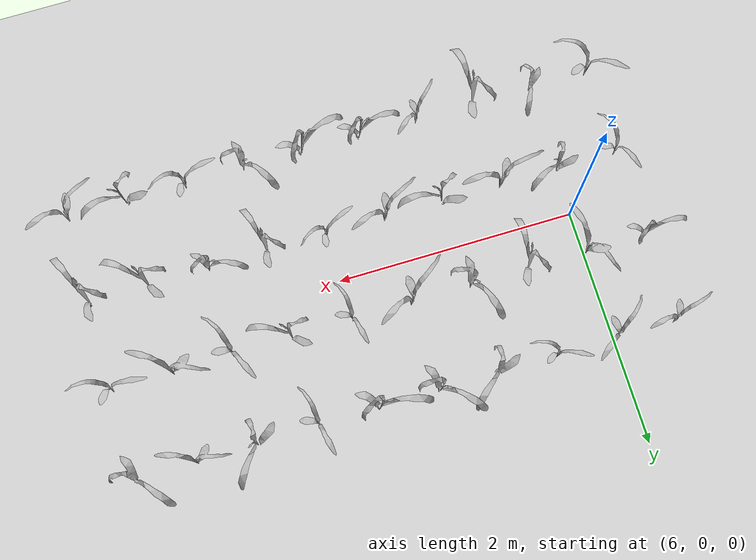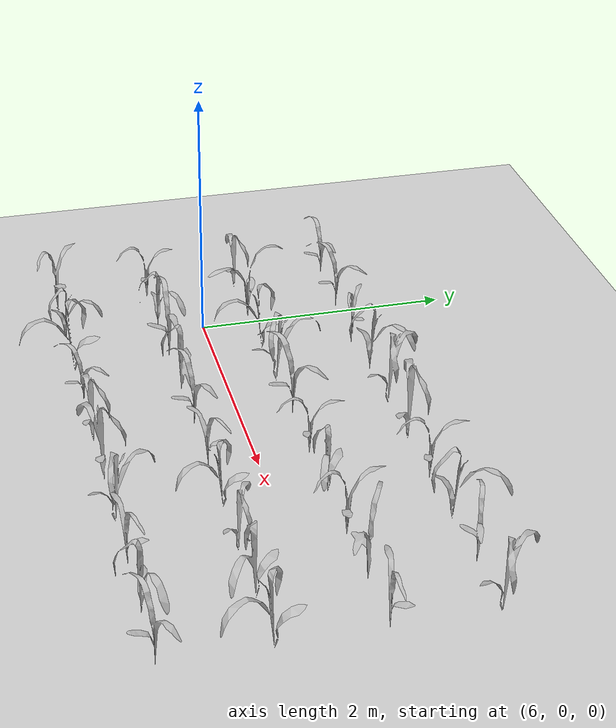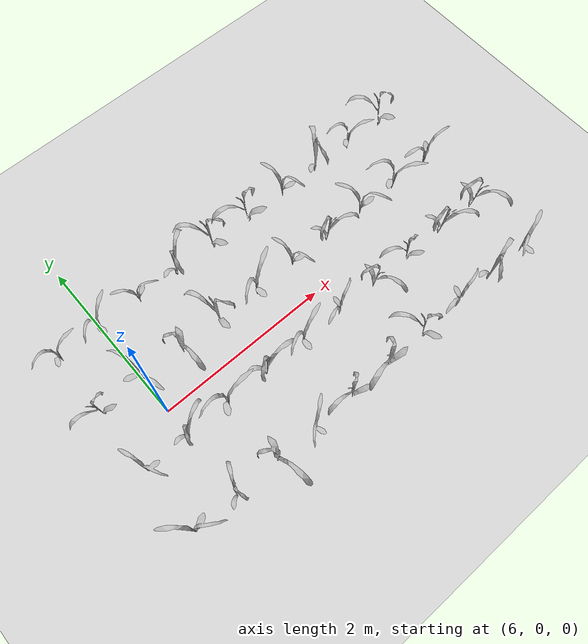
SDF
<sdf version="1.6">
 <world name="default">
  <model name="ground_plane">
   <static>1</static>
   <link name="link">
    <collision name="collision">
     <geometry><plane><normal>0 0 1</normal><size>100 100</size></plane></geometry>
     <surface>
      <contact><collide_bitmask>65535</collide_bitmask></contact>
      <friction><ode><mu>100</mu><mu2>50</mu2></ode></friction>
     </surface>
    </collision>
    <visual name="visual">
     <cast_shadows>0</cast_shadows>
     <geometry><plane><normal>0 0 1</normal><size>100 100</size></plane></geometry>
     <material>
      <script><uri>file://media/materials/scripts/gazebo.material</uri><name>Gazebo/Grey</name></script>
     </material>
    </visual>
   </link>
  </model>
  <model name="maize_01_0040">
   <pose>5.5 0.375 0.05 0 -0 3.887574766477994</pose>
   <link name="maize_01_0040_link">
    <inertial>
     <mass>5.0</mass>
     <inertia>
      <ixx>0.0033416667</ixx>
      <ixy>0</ixy>
      <ixz>0</ixz>
      <iyy>0.0033416667</iyy>
      <iyz>0</iyz>
      <izz>0.000016666667</izz>
     </inertia>
     <pose>0 0 0.1 0 0 0</pose>
    </inertial>
    <collision name="collision">
     <pose>0 0 0.2 0 -0 0</pose>
     <geometry><box><size>0.02 0.02 0.4</size></box></geometry>
     <surface><friction><ode><mu>10</mu><mu2>10</mu2></ode></friction></surface>
    </collision>
    <visual name="visual">
     <geometry>
      <mesh>
       <uri>model://maize_01/meshes/maize_01.dae</uri>
       <scale>0.5489192693650802 0.5489192693650802 0.5489192693650802</scale>
      </mesh>
     </geometry>
    </visual>
   </link>
  </model>
  <model name="maize_02_0041">
   <pose>5.5 1.125 0.05 0 -0 2.3619413126375988</pose>
   <link name="maize_02_0041_link">
    <inertial>
     <mass>5.0</mass>
     <inertia>
      <ixx>0.0033416667</ixx>
      <ixy>0</ixy>
      <ixz>0</ixz>
      <iyy>0.0033416667</iyy>
      <iyz>0</iyz>
      <izz>0.000016666667</izz>
     </inertia>
     <pose>0 0 0.1 0 0 0</pose>
    </inertial>
    <collision name="collision">
     <pose>0 0 0.2 0 -0 0</pose>
     <geometry><box><size>0.02 0.02 0.4</size></box></geometry>
     <surface><friction><ode><mu>10</mu><mu2>10</mu2></ode></friction></surface>
    </collision>
    <visual name="visual">
     <geometry>
      <mesh>
       <uri>model://maize_02/meshes/maize_02.dae</uri>
       <scale>0.5501693872556289 0.5501693872556289 0.5501693872556289</scale>
      </mesh>
     </geometry>
    </visual>
   </link>
  </model>
  <model name="maize_02_0042">
   <pose>5.5 -0.375 0.05 0 -0 4.083068784888128</pose>
   <link name="maize_02_0042_link">
    <inertial>
     <mass>5.0</mass>
     <inertia>
      <ixx>0.0033416667</ixx>
      <ixy>0</ixy>
      <ixz>0</ixz>
      <iyy>0.0033416667</iyy>
      <iyz>0</iyz>
      <izz>0.000016666667</izz>
     </inertia>
     <pose>0 0 0.1 0 0 0</pose>
    </inertial>
    <collision name="collision">
     <pose>0 0 0.2 0 -0 0</pose>
     <geometry><box><size>0.02 0.02 0.4</size></box></geometry>
     <surface><friction><ode><mu>10</mu><mu2>10</mu2></ode></friction></surface>
    </collision>
    <visual name="visual">
     <geometry>
      <mesh>
       <uri>model://maize_02/meshes/maize_02.dae</uri>
       <scale>0.5530000482037853 0.5530000482037853 0.5530000482037853</scale>
      </mesh>
     </geometry>
    </visual>
   </link>
  </model>
  <model name="maize_02_0043">
   <pose>5.5 -1.125 0.05 0 -0 4.679963526451803</pose>
   <link name="maize_02_0043_link">
    <inertial>
     <mass>5.0</mass>
     <inertia>
      <ixx>0.0033416667</ixx>
      <ixy>0</ixy>
      <ixz>0</ixz>
      <iyy>0.0033416667</iyy>
      <iyz>0</iyz>
      <izz>0.000016666667</izz>
     </inertia>
     <pose>0 0 0.1 0 0 0</pose>
    </inertial>
    <collision name="collision">
     <pose>0 0 0.2 0 -0 0</pose>
     <geometry><box><size>0.02 0.02 0.4</size></box></geometry>
     <surface><friction><ode><mu>10</mu><mu2>10</mu2></ode></friction></surface>
    </collision>
    <visual name="visual">
     <geometry>
      <mesh>
       <uri>model://maize_02/meshes/maize_02.dae</uri>
       <scale>0.6465327736157129 0.6465327736157129 0.6465327736157129</scale>
      </mesh>
     </geometry>
    </visual>
   </link>
  </model>
  <model name="maize_02_0044">
   <pose>6.0 0.375 0.05 0 -0 0.8436668734788505</pose>
   <link name="maize_02_0044_link">
    <inertial>
     <mass>5.0</mass>
     <inertia>
      <ixx>0.0033416667</ixx>
      <ixy>0</ixy>
      <ixz>0</ixz>
      <iyy>0.0033416667</iyy>
      <iyz>0</iyz>
      <izz>0.000016666667</izz>
     </inertia>
     <pose>0 0 0.1 0 0 0</pose>
    </inertial>
    <collision name="collision">
     <pose>0 0 0.2 0 -0 0</pose>
     <geometry><box><size>0.02 0.02 0.4</size></box></geometry>
     <surface><friction><ode><mu>10</mu><mu2>10</mu2></ode></friction></surface>
    </collision>
    <visual name="visual">
     <geometry>
      <mesh>
       <uri>model://maize_02/meshes/maize_02.dae</uri>
       <scale>0.6668488416863659 0.6668488416863659 0.6668488416863659</scale>
      </mesh>
     </geometry>
    </visual>
   </link>
  </model>
  <model name="maize_02_0045">
   <pose>6.0 1.125 0.05 0 -0 2.847201937121884</pose>
   <link name="maize_02_0045_link">
    <inertial>
     <mass>5.0</mass>
     <inertia>
      <ixx>0.0033416667</ixx>
      <ixy>0</ixy>
      <ixz>0</ixz>
      <iyy>0.0033416667</iyy>
      <iyz>0</iyz>
      <izz>0.000016666667</izz>
     </inertia>
     <pose>0 0 0.1 0 0 0</pose>
    </inertial>
    <collision name="collision">
     <pose>0 0 0.2 0 -0 0</pose>
     <geometry><box><size>0.02 0.02 0.4</size></box></geometry>
     <surface><friction><ode><mu>10</mu><mu2>10</mu2></ode></friction></surface>
    </collision>
    <visual name="visual">
     <geometry>
      <mesh>
       <uri>model://maize_02/meshes/maize_02.dae</uri>
       <scale>0.5905462226182049 0.5905462226182049 0.5905462226182049</scale>
      </mesh>
     </geometry>
    </visual>
   </link>
  </model>
  <model name="maize_01_0046">
   <pose>6.0 -0.375 0.05 0 -0 1.2947930681933637</pose>
   <link name="maize_01_0046_link">
    <inertial>
     <mass>5.0</mass>
     <inertia>
      <ixx>0.0033416667</ixx>
      <ixy>0</ixy>
      <ixz>0</ixz>
      <iyy>0.0033416667</iyy>
      <iyz>0</iyz>
      <izz>0.000016666667</izz>
     </inertia>
     <pose>0 0 0.1 0 0 0</pose>
    </inertial>
    <collision name="collision">
     <pose>0 0 0.2 0 -0 0</pose>
     <geometry><box><size>0.02 0.02 0.4</size></box></geometry>
     <surface><friction><ode><mu>10</mu><mu2>10</mu2></ode></friction></surface>
    </collision>
    <visual name="visual">
     <geometry>
      <mesh>
       <uri>model://maize_01/meshes/maize_01.dae</uri>
       <scale>0.5602845266150258 0.5602845266150258 0.5602845266150258</scale>
      </mesh>
     </geometry>
    </visual>
   </link>
  </model>
  <model name="maize_01_0047">
   <pose>6.0 -1.125 0.05 0 -0 1.9447629273371778</pose>
   <link name="maize_01_0047_link">
    <inertial>
     <mass>5.0</mass>
     <inertia>
      <ixx>0.0033416667</ixx>
      <ixy>0</ixy>
      <ixz>0</ixz>
      <iyy>0.0033416667</iyy>
      <iyz>0</iyz>
      <izz>0.000016666667</izz>
     </inertia>
     <pose>0 0 0.1 0 0 0</pose>
    </inertial>
    <collision name="collision">
     <pose>0 0 0.2 0 -0 0</pose>
     <geometry><box><size>0.02 0.02 0.4</size></box></geometry>
     <surface><friction><ode><mu>10</mu><mu2>10</mu2></ode></friction></surface>
    </collision>
    <visual name="visual">
     <geometry>
      <mesh>
       <uri>model://maize_01/meshes/maize_01.dae</uri>
       <scale>0.5058932557829288 0.5058932557829288 0.5058932557829288</scale>
      </mesh>
     </geometry>
    </visual>
   </link>
  </model>
  <model name="maize_01_0048">
   <pose>6.5 0.375 0.05 0 -0 5.524367839968027</pose>
   <link name="maize_01_0048_link">
    <inertial>
     <mass>5.0</mass>
     <inertia>
      <ixx>0.0033416667</ixx>
      <ixy>0</ixy>
      <ixz>0</ixz>
      <iyy>0.0033416667</iyy>
      <iyz>0</iyz>
      <izz>0.000016666667</izz>
     </inertia>
     <pose>0 0 0.1 0 0 0</pose>
    </inertial>
    <collision name="collision">
     <pose>0 0 0.2 0 -0 0</pose>
     <geometry><box><size>0.02 0.02 0.4</size></box></geometry>
     <surface><friction><ode><mu>10</mu><mu2>10</mu2></ode></friction></surface>
    </collision>
    <visual name="visual">
     <geometry>
      <mesh>
       <uri>model://maize_01/meshes/maize_01.dae</uri>
       <scale>0.634801878046184 0.634801878046184 0.634801878046184</scale>
      </mesh>
     </geometry>
    </visual>
   </link>
  </model>
  <model name="maize_02_0049">
   <pose>6.5 1.125 0.05 0 -0 4.81982130819356</pose>
   <link name="maize_02_0049_link">
    <inertial>
     <mass>5.0</mass>
     <inertia>
      <ixx>0.0033416667</ixx>
      <ixy>0</ixy>
      <ixz>0</ixz>
      <iyy>0.0033416667</iyy>
      <iyz>0</iyz>
      <izz>0.000016666667</izz>
     </inertia>
     <pose>0 0 0.1 0 0 0</pose>
    </inertial>
    <collision name="collision">
     <pose>0 0 0.2 0 -0 0</pose>
     <geometry><box><size>0.02 0.02 0.4</size></box></geometry>
     <surface><friction><ode><mu>10</mu><mu2>10</mu2></ode></friction></surface>
    </collision>
    <visual name="visual">
     <geometry>
      <mesh>
       <uri>model://maize_02/meshes/maize_02.dae</uri>
       <scale>0.5031114657585396 0.5031114657585396 0.5031114657585396</scale>
      </mesh>
     </geometry>
    </visual>
   </link>
  </model>
  <model name="maize_02_0050">
   <pose>6.5 -0.375 0.05 0 -0 2.2194903250908564</pose>
   <link name="maize_02_0050_link">
    <inertial>
     <mass>5.0</mass>
     <inertia>
      <ixx>0.0033416667</ixx>
      <ixy>0</ixy>
      <ixz>0</ixz>
      <iyy>0.0033416667</iyy>
      <iyz>0</iyz>
      <izz>0.000016666667</izz>
     </inertia>
     <pose>0 0 0.1 0 0 0</pose>
    </inertial>
    <collision name="collision">
     <pose>0 0 0.2 0 -0 0</pose>
     <geometry><box><size>0.02 0.02 0.4</size></box></geometry>
     <surface><friction><ode><mu>10</mu><mu2>10</mu2></ode></friction></surface>
    </collision>
    <visual name="visual">
     <geometry>
      <mesh>
       <uri>model://maize_02/meshes/maize_02.dae</uri>
       <scale>0.6820594748634804 0.6820594748634804 0.6820594748634804</scale>
      </mesh>
     </geometry>
    </visual>
   </link>
  </model>
  <model name="maize_01_0051">
   <pose>6.5 -1.125 0.05 0 -0 5.651115416720341</pose>
   <link name="maize_01_0051_link">
    <inertial>
     <mass>5.0</mass>
     <inertia>
      <ixx>0.0033416667</ixx>
      <ixy>0</ixy>
      <ixz>0</ixz>
      <iyy>0.0033416667</iyy>
      <iyz>0</iyz>
      <izz>0.000016666667</izz>
     </inertia>
     <pose>0 0 0.1 0 0 0</pose>
    </inertial>
    <collision name="collision">
     <pose>0 0 0.2 0 -0 0</pose>
     <geometry><box><size>0.02 0.02 0.4</size></box></geometry>
     <surface><friction><ode><mu>10</mu><mu2>10</mu2></ode></friction></surface>
    </collision>
    <visual name="visual">
     <geometry>
      <mesh>
       <uri>model://maize_01/meshes/maize_01.dae</uri>
       <scale>0.6958102714642818 0.6958102714642818 0.6958102714642818</scale>
      </mesh>
     </geometry>
    </visual>
   </link>
  </model>
  <model name="maize_01_0052">
   <pose>7.0 0.375 0.05 0 -0 2.7099210681280055</pose>
   <link name="maize_01_0052_link">
    <inertial>
     <mass>5.0</mass>
     <inertia>
      <ixx>0.0033416667</ixx>
      <ixy>0</ixy>
      <ixz>0</ixz>
      <iyy>0.0033416667</iyy>
      <iyz>0</iyz>
      <izz>0.000016666667</izz>
     </inertia>
     <pose>0 0 0.1 0 0 0</pose>
    </inertial>
    <collision name="collision">
     <pose>0 0 0.2 0 -0 0</pose>
     <geometry><box><size>0.02 0.02 0.4</size></box></geometry>
     <surface><friction><ode><mu>10</mu><mu2>10</mu2></ode></friction></surface>
    </collision>
    <visual name="visual">
     <geometry>
      <mesh>
       <uri>model://maize_01/meshes/maize_01.dae</uri>
       <scale>0.6691300027135483 0.6691300027135483 0.6691300027135483</scale>
      </mesh>
     </geometry>
    </visual>
   </link>
  </model>
  <model name="maize_01_0053">
   <pose>7.0 1.125 0.05 0 -0 1.5384217549494101</pose>
   <link name="maize_01_0053_link">
    <inertial>
     <mass>5.0</mass>
     <inertia>
      <ixx>0.0033416667</ixx>
      <ixy>0</ixy>
      <ixz>0</ixz>
      <iyy>0.0033416667</iyy>
      <iyz>0</iyz>
      <izz>0.000016666667</izz>
     </inertia>
     <pose>0 0 0.1 0 0 0</pose>
    </inertial>
    <collision name="collision">
     <pose>0 0 0.2 0 -0 0</pose>
     <geometry><box><size>0.02 0.02 0.4</size></box></geometry>
     <surface><friction><ode><mu>10</mu><mu2>10</mu2></ode></friction></surface>
    </collision>
    <visual name="visual">
     <geometry>
      <mesh>
       <uri>model://maize_01/meshes/maize_01.dae</uri>
       <scale>0.633565423696171 0.633565423696171 0.633565423696171</scale>
      </mesh>
     </geometry>
    </visual>
   </link>
  </model>
  <model name="maize_01_0054">
   <pose>7.0 -0.375 0.05 0 -0 0.7859409075128175</pose>
   <link name="maize_01_0054_link">
    <inertial>
     <mass>5.0</mass>
     <inertia>
      <ixx>0.0033416667</ixx>
      <ixy>0</ixy>
      <ixz>0</ixz>
      <iyy>0.0033416667</iyy>
      <iyz>0</iyz>
      <izz>0.000016666667</izz>
     </inertia>
     <pose>0 0 0.1 0 0 0</pose>
    </inertial>
    <collision name="collision">
     <pose>0 0 0.2 0 -0 0</pose>
     <geometry><box><size>0.02 0.02 0.4</size></box></geometry>
     <surface><friction><ode><mu>10</mu><mu2>10</mu2></ode></friction></surface>
    </collision>
    <visual name="visual">
     <geometry>
      <mesh>
       <uri>model://maize_01/meshes/maize_01.dae</uri>
       <scale>0.6438057635443771 0.6438057635443771 0.6438057635443771</scale>
      </mesh>
     </geometry>
    </visual>
   </link>
  </model>
  <model name="maize_02_0055">
   <pose>7.0 -1.125 0.05 0 -0 2.8656782531925153</pose>
   <link name="maize_02_0055_link">
    <inertial>
     <mass>5.0</mass>
     <inertia>
      <ixx>0.0033416667</ixx>
      <ixy>0</ixy>
      <ixz>0</ixz>
      <iyy>0.0033416667</iyy>
      <iyz>0</iyz>
      <izz>0.000016666667</izz>
     </inertia>
     <pose>0 0 0.1 0 0 0</pose>
    </inertial>
    <collision name="collision">
     <pose>0 0 0.2 0 -0 0</pose>
     <geometry><box><size>0.02 0.02 0.4</size></box></geometry>
     <surface><friction><ode><mu>10</mu><mu2>10</mu2></ode></friction></surface>
    </collision>
    <visual name="visual">
     <geometry>
      <mesh>
       <uri>model://maize_02/meshes/maize_02.dae</uri>
       <scale>0.5251471431352807 0.5251471431352807 0.5251471431352807</scale>
      </mesh>
     </geometry>
    </visual>
   </link>
  </model>
  <model name="maize_02_0056">
   <pose>7.5 0.375 0.05 0 -0 2.7171973356963255</pose>
   <link name="maize_02_0056_link">
    <inertial>
     <mass>5.0</mass>
     <inertia>
      <ixx>0.0033416667</ixx>
      <ixy>0</ixy>
      <ixz>0</ixz>
      <iyy>0.0033416667</iyy>
      <iyz>0</iyz>
      <izz>0.000016666667</izz>
     </inertia>
     <pose>0 0 0.1 0 0 0</pose>
    </inertial>
    <collision name="collision">
     <pose>0 0 0.2 0 -0 0</pose>
     <geometry><box><size>0.02 0.02 0.4</size></box></geometry>
     <surface><friction><ode><mu>10</mu><mu2>10</mu2></ode></friction></surface>
    </collision>
    <visual name="visual">
     <geometry>
      <mesh>
       <uri>model://maize_02/meshes/maize_02.dae</uri>
       <scale>0.6952513788042518 0.6952513788042518 0.6952513788042518</scale>
      </mesh>
     </geometry>
    </visual>
   </link>
  </model>
  <model name="maize_01_0057">
   <pose>7.5 1.125 0.05 0 -0 3.131954284944509</pose>
   <link name="maize_01_0057_link">
    <inertial>
     <mass>5.0</mass>
     <inertia>
      <ixx>0.0033416667</ixx>
      <ixy>0</ixy>
      <ixz>0</ixz>
      <iyy>0.0033416667</iyy>
      <iyz>0</iyz>
      <izz>0.000016666667</izz>
     </inertia>
     <pose>0 0 0.1 0 0 0</pose>
    </inertial>
    <collision name="collision">
     <pose>0 0 0.2 0 -0 0</pose>
     <geometry><box><size>0.02 0.02 0.4</size></box></geometry>
     <surface><friction><ode><mu>10</mu><mu2>10</mu2></ode></friction></surface>
    </collision>
    <visual name="visual">
     <geometry>
      <mesh>
       <uri>model://maize_01/meshes/maize_01.dae</uri>
       <scale>0.6762899672990061 0.6762899672990061 0.6762899672990061</scale>
      </mesh>
     </geometry>
    </visual>
   </link>
  </model>
  <model name="maize_02_0058">
   <pose>7.5 -0.375 0.05 0 -0 2.5350907079838056</pose>
   <link name="maize_02_0058_link">
    <inertial>
     <mass>5.0</mass>
     <inertia>
      <ixx>0.0033416667</ixx>
      <ixy>0</ixy>
      <ixz>0</ixz>
      <iyy>0.0033416667</iyy>
      <iyz>0</iyz>
      <izz>0.000016666667</izz>
     </inertia>
     <pose>0 0 0.1 0 0 0</pose>
    </inertial>
    <collision name="collision">
     <pose>0 0 0.2 0 -0 0</pose>
     <geometry><box><size>0.02 0.02 0.4</size></box></geometry>
     <surface><friction><ode><mu>10</mu><mu2>10</mu2></ode></friction></surface>
    </collision>
    <visual name="visual">
     <geometry>
      <mesh>
       <uri>model://maize_02/meshes/maize_02.dae</uri>
       <scale>0.6381679518568922 0.6381679518568922 0.6381679518568922</scale>
      </mesh>
     </geometry>
    </visual>
   </link>
  </model>
  <model name="maize_01_0059">
   <pose>7.5 -1.125 0.05 0 -0 3.968055489600705</pose>
   <link name="maize_01_0059_link">
    <inertial>
     <mass>5.0</mass>
     <inertia>
      <ixx>0.0033416667</ixx>
      <ixy>0</ixy>
      <ixz>0</ixz>
      <iyy>0.0033416667</iyy>
      <iyz>0</iyz>
      <izz>0.000016666667</izz>
     </inertia>
     <pose>0 0 0.1 0 0 0</pose>
    </inertial>
    <collision name="collision">
     <pose>0 0 0.2 0 -0 0</pose>
     <geometry><box><size>0.02 0.02 0.4</size></box></geometry>
     <surface><friction><ode><mu>10</mu><mu2>10</mu2></ode></friction></surface>
    </collision>
    <visual name="visual">
     <geometry>
      <mesh>
       <uri>model://maize_01/meshes/maize_01.dae</uri>
       <scale>0.5893720003046389 0.5893720003046389 0.5893720003046389</scale>
      </mesh>
     </geometry>
    </visual>
   </link>
  </model>
  <model name="maize_02_0060">
   <pose>8.0 0.375 0.05 0 -0 3.9464323315970296</pose>
   <link name="maize_02_0060_link">
    <inertial>
     <mass>5.0</mass>
     <inertia>
      <ixx>0.0033416667</ixx>
      <ixy>0</ixy>
      <ixz>0</ixz>
      <iyy>0.0033416667</iyy>
      <iyz>0</iyz>
      <izz>0.000016666667</izz>
     </inertia>
     <pose>0 0 0.1 0 0 0</pose>
    </inertial>
    <collision name="collision">
     <pose>0 0 0.2 0 -0 0</pose>
     <geometry><box><size>0.02 0.02 0.4</size></box></geometry>
     <surface><friction><ode><mu>10</mu><mu2>10</mu2></ode></friction></surface>
    </collision>
    <visual name="visual">
     <geometry>
      <mesh>
       <uri>model://maize_02/meshes/maize_02.dae</uri>
       <scale>0.5412554866058185 0.5412554866058185 0.5412554866058185</scale>
      </mesh>
     </geometry>
    </visual>
   </link>
  </model>
  <model name="maize_01_0061">
   <pose>8.0 1.125 0.05 0 -0 3.6858187307931813</pose>
   <link name="maize_01_0061_link">
    <inertial>
     <mass>5.0</mass>
     <inertia>
      <ixx>0.0033416667</ixx>
      <ixy>0</ixy>
      <ixz>0</ixz>
      <iyy>0.0033416667</iyy>
      <iyz>0</iyz>
      <izz>0.000016666667</izz>
     </inertia>
     <pose>0 0 0.1 0 0 0</pose>
    </inertial>
    <collision name="collision">
     <pose>0 0 0.2 0 -0 0</pose>
     <geometry><box><size>0.02 0.02 0.4</size></box></geometry>
     <surface><friction><ode><mu>10</mu><mu2>10</mu2></ode></friction></surface>
    </collision>
    <visual name="visual">
     <geometry>
      <mesh>
       <uri>model://maize_01/meshes/maize_01.dae</uri>
       <scale>0.6982450714203192 0.6982450714203192 0.6982450714203192</scale>
      </mesh>
     </geometry>
    </visual>
   </link>
  </model>
  <model name="maize_02_0062">
   <pose>8.0 -0.375 0.05 0 -0 5.693590974628645</pose>
   <link name="maize_02_0062_link">
    <inertial>
     <mass>5.0</mass>
     <inertia>
      <ixx>0.0033416667</ixx>
      <ixy>0</ixy>
      <ixz>0</ixz>
      <iyy>0.0033416667</iyy>
      <iyz>0</iyz>
      <izz>0.000016666667</izz>
     </inertia>
     <pose>0 0 0.1 0 0 0</pose>
    </inertial>
    <collision name="collision">
     <pose>0 0 0.2 0 -0 0</pose>
     <geometry><box><size>0.02 0.02 0.4</size></box></geometry>
     <surface><friction><ode><mu>10</mu><mu2>10</mu2></ode></friction></surface>
    </collision>
    <visual name="visual">
     <geometry>
      <mesh>
       <uri>model://maize_02/meshes/maize_02.dae</uri>
       <scale>0.5254142955412426 0.5254142955412426 0.5254142955412426</scale>
      </mesh>
     </geometry>
    </visual>
   </link>
  </model>
  <model name="maize_01_0063">
   <pose>8.0 -1.125 0.05 0 -0 4.195880050040716</pose>
   <link name="maize_01_0063_link">
    <inertial>
     <mass>5.0</mass>
     <inertia>
      <ixx>0.0033416667</ixx>
      <ixy>0</ixy>
      <ixz>0</ixz>
      <iyy>0.0033416667</iyy>
      <iyz>0</iyz>
      <izz>0.000016666667</izz>
     </inertia>
     <pose>0 0 0.1 0 0 0</pose>
    </inertial>
    <collision name="collision">
     <pose>0 0 0.2 0 -0 0</pose>
     <geometry><box><size>0.02 0.02 0.4</size></box></geometry>
     <surface><friction><ode><mu>10</mu><mu2>10</mu2></ode></friction></surface>
    </collision>
    <visual name="visual">
     <geometry>
      <mesh>
       <uri>model://maize_01/meshes/maize_01.dae</uri>
       <scale>0.674402580278686 0.674402580278686 0.674402580278686</scale>
      </mesh>
     </geometry>
    </visual>
   </link>
  </model>
  <model name="maize_01_0064">
   <pose>8.5 0.375 0.05 0 -0 0.437970465267605</pose>
   <link name="maize_01_0064_link">
    <inertial>
     <mass>5.0</mass>
     <inertia>
      <ixx>0.0033416667</ixx>
      <ixy>0</ixy>
      <ixz>0</ixz>
      <iyy>0.0033416667</iyy>
      <iyz>0</iyz>
      <izz>0.000016666667</izz>
     </inertia>
     <pose>0 0 0.1 0 0 0</pose>
    </inertial>
    <collision name="collision">
     <pose>0 0 0.2 0 -0 0</pose>
     <geometry><box><size>0.02 0.02 0.4</size></box></geometry>
     <surface><friction><ode><mu>10</mu><mu2>10</mu2></ode></friction></surface>
    </collision>
    <visual name="visual">
     <geometry>
      <mesh>
       <uri>model://maize_01/meshes/maize_01.dae</uri>
       <scale>0.6044091149506376 0.6044091149506376 0.6044091149506376</scale>
      </mesh>
     </geometry>
    </visual>
   </link>
  </model>
  <model name="maize_02_0065">
   <pose>8.5 1.125 0.05 0 -0 3.9411018682151764</pose>
   <link name="maize_02_0065_link">
    <inertial>
     <mass>5.0</mass>
     <inertia>
      <ixx>0.0033416667</ixx>
      <ixy>0</ixy>
      <ixz>0</ixz>
      <iyy>0.0033416667</iyy>
      <iyz>0</iyz>
      <izz>0.000016666667</izz>
     </inertia>
     <pose>0 0 0.1 0 0 0</pose>
    </inertial>
    <collision name="collision">
     <pose>0 0 0.2 0 -0 0</pose>
     <geometry><box><size>0.02 0.02 0.4</size></box></geometry>
     <surface><friction><ode><mu>10</mu><mu2>10</mu2></ode></friction></surface>
    </collision>
    <visual name="visual">
     <geometry>
      <mesh>
       <uri>model://maize_02/meshes/maize_02.dae</uri>
       <scale>0.5868912992685925 0.5868912992685925 0.5868912992685925</scale>
      </mesh>
     </geometry>
    </visual>
   </link>
  </model>
  <model name="maize_01_0066">
   <pose>8.5 -0.375 0.05 0 -0 5.825034407605688</pose>
   <link name="maize_01_0066_link">
    <inertial>
     <mass>5.0</mass>
     <inertia>
      <ixx>0.0033416667</ixx>
      <ixy>0</ixy>
      <ixz>0</ixz>
      <iyy>0.0033416667</iyy>
      <iyz>0</iyz>
      <izz>0.000016666667</izz>
     </inertia>
     <pose>0 0 0.1 0 0 0</pose>
    </inertial>
    <collision name="collision">
     <pose>0 0 0.2 0 -0 0</pose>
     <geometry><box><size>0.02 0.02 0.4</size></box></geometry>
     <surface><friction><ode><mu>10</mu><mu2>10</mu2></ode></friction></surface>
    </collision>
    <visual name="visual">
     <geometry>
      <mesh>
       <uri>model://maize_01/meshes/maize_01.dae</uri>
       <scale>0.6038767018513062 0.6038767018513062 0.6038767018513062</scale>
      </mesh>
     </geometry>
    </visual>
   </link>
  </model>
  <model name="maize_01_0067">
   <pose>8.5 -1.125 0.05 0 -0 2.9630977109878196</pose>
   <link name="maize_01_0067_link">
    <inertial>
     <mass>5.0</mass>
     <inertia>
      <ixx>0.0033416667</ixx>
      <ixy>0</ixy>
      <ixz>0</ixz>
      <iyy>0.0033416667</iyy>
      <iyz>0</iyz>
      <izz>0.000016666667</izz>
     </inertia>
     <pose>0 0 0.1 0 0 0</pose>
    </inertial>
    <collision name="collision">
     <pose>0 0 0.2 0 -0 0</pose>
     <geometry><box><size>0.02 0.02 0.4</size></box></geometry>
     <surface><friction><ode><mu>10</mu><mu2>10</mu2></ode></friction></surface>
    </collision>
    <visual name="visual">
     <geometry>
      <mesh>
       <uri>model://maize_01/meshes/maize_01.dae</uri>
       <scale>0.6376493713539123 0.6376493713539123 0.6376493713539123</scale>
      </mesh>
     </geometry>
    </visual>
   </link>
  </model>
  <model name="maize_02_0068">
   <pose>9.0 0.375 0.05 0 -0 4.16095023320316</pose>
   <link name="maize_02_0068_link">
    <inertial>
     <mass>5.0</mass>
     <inertia>
      <ixx>0.0033416667</ixx>
      <ixy>0</ixy>
      <ixz>0</ixz>
      <iyy>0.0033416667</iyy>
      <iyz>0</iyz>
      <izz>0.000016666667</izz>
     </inertia>
     <pose>0 0 0.1 0 0 0</pose>
    </inertial>
    <collision name="collision">
     <pose>0 0 0.2 0 -0 0</pose>
     <geometry><box><size>0.02 0.02 0.4</size></box></geometry>
     <surface><friction><ode><mu>10</mu><mu2>10</mu2></ode></friction></surface>
    </collision>
    <visual name="visual">
     <geometry>
      <mesh>
       <uri>model://maize_02/meshes/maize_02.dae</uri>
       <scale>0.6287042195204358 0.6287042195204358 0.6287042195204358</scale>
      </mesh>
     </geometry>
    </visual>
   </link>
  </model>
  <model name="maize_01_0069">
   <pose>9.0 1.125 0.05 0 -0 1.7790052859951344</pose>
   <link name="maize_01_0069_link">
    <inertial>
     <mass>5.0</mass>
     <inertia>
      <ixx>0.0033416667</ixx>
      <ixy>0</ixy>
      <ixz>0</ixz>
      <iyy>0.0033416667</iyy>
      <iyz>0</iyz>
      <izz>0.000016666667</izz>
     </inertia>
     <pose>0 0 0.1 0 0 0</pose>
    </inertial>
    <collision name="collision">
     <pose>0 0 0.2 0 -0 0</pose>
     <geometry><box><size>0.02 0.02 0.4</size></box></geometry>
     <surface><friction><ode><mu>10</mu><mu2>10</mu2></ode></friction></surface>
    </collision>
    <visual name="visual">
     <geometry>
      <mesh>
       <uri>model://maize_01/meshes/maize_01.dae</uri>
       <scale>0.6495170978152995 0.6495170978152995 0.6495170978152995</scale>
      </mesh>
     </geometry>
    </visual>
   </link>
  </model>
  <model name="maize_01_0070">
   <pose>9.0 -0.375 0.05 0 -0 3.518011417776488</pose>
   <link name="maize_01_0070_link">
    <inertial>
     <mass>5.0</mass>
     <inertia>
      <ixx>0.0033416667</ixx>
      <ixy>0</ixy>
      <ixz>0</ixz>
      <iyy>0.0033416667</iyy>
      <iyz>0</iyz>
      <izz>0.000016666667</izz>
     </inertia>
     <pose>0 0 0.1 0 0 0</pose>
    </inertial>
    <collision name="collision">
     <pose>0 0 0.2 0 -0 0</pose>
     <geometry><box><size>0.02 0.02 0.4</size></box></geometry>
     <surface><friction><ode><mu>10</mu><mu2>10</mu2></ode></friction></surface>
    </collision>
    <visual name="visual">
     <geometry>
      <mesh>
       <uri>model://maize_01/meshes/maize_01.dae</uri>
       <scale>0.549971991842383 0.549971991842383 0.549971991842383</scale>
      </mesh>
     </geometry>
    </visual>
   </link>
  </model>
  <model name="maize_02_0071">
   <pose>9.0 -1.125 0.05 0 -0 5.49208654981782</pose>
   <link name="maize_02_0071_link">
    <inertial>
     <mass>5.0</mass>
     <inertia>
      <ixx>0.0033416667</ixx>
      <ixy>0</ixy>
      <ixz>0</ixz>
      <iyy>0.0033416667</iyy>
      <iyz>0</iyz>
      <izz>0.000016666667</izz>
     </inertia>
     <pose>0 0 0.1 0 0 0</pose>
    </inertial>
    <collision name="collision">
     <pose>0 0 0.2 0 -0 0</pose>
     <geometry><box><size>0.02 0.02 0.4</size></box></geometry>
     <surface><friction><ode><mu>10</mu><mu2>10</mu2></ode></friction></surface>
    </collision>
    <visual name="visual">
     <geometry>
      <mesh>
       <uri>model://maize_02/meshes/maize_02.dae</uri>
       <scale>0.5793124686730746 0.5793124686730746 0.5793124686730746</scale>
      </mesh>
     </geometry>
    </visual>
   </link>
  </model>
  <model name="maize_02_0072">
   <pose>9.5 0.375 0.05 0 -0 1.6163670671618176</pose>
   <link name="maize_02_0072_link">
    <inertial>
     <mass>5.0</mass>
     <inertia>
      <ixx>0.0033416667</ixx>
      <ixy>0</ixy>
      <ixz>0</ixz>
      <iyy>0.0033416667</iyy>
      <iyz>0</iyz>
      <izz>0.000016666667</izz>
     </inertia>
     <pose>0 0 0.1 0 0 0</pose>
    </inertial>
    <collision name="collision">
     <pose>0 0 0.2 0 -0 0</pose>
     <geometry><box><size>0.02 0.02 0.4</size></box></geometry>
     <surface><friction><ode><mu>10</mu><mu2>10</mu2></ode></friction></surface>
    </collision>
    <visual name="visual">
     <geometry>
      <mesh>
       <uri>model://maize_02/meshes/maize_02.dae</uri>
       <scale>0.68122728880079 0.68122728880079 0.68122728880079</scale>
      </mesh>
     </geometry>
    </visual>
   </link>
  </model>
  <model name="maize_02_0073">
   <pose>9.5 1.125 0.05 0 -0 1.85082525197933</pose>
   <link name="maize_02_0073_link">
    <inertial>
     <mass>5.0</mass>
     <inertia>
      <ixx>0.0033416667</ixx>
      <ixy>0</ixy>
      <ixz>0</ixz>
      <iyy>0.0033416667</iyy>
      <iyz>0</iyz>
      <izz>0.000016666667</izz>
     </inertia>
     <pose>0 0 0.1 0 0 0</pose>
    </inertial>
    <collision name="collision">
     <pose>0 0 0.2 0 -0 0</pose>
     <geometry><box><size>0.02 0.02 0.4</size></box></geometry>
     <surface><friction><ode><mu>10</mu><mu2>10</mu2></ode></friction></surface>
    </collision>
    <visual name="visual">
     <geometry>
      <mesh>
       <uri>model://maize_02/meshes/maize_02.dae</uri>
       <scale>0.584847417908603 0.584847417908603 0.584847417908603</scale>
      </mesh>
     </geometry>
    </visual>
   </link>
  </model>
  <model name="maize_01_0074">
   <pose>9.5 -0.375 0.05 0 -0 0.16114885219384603</pose>
   <link name="maize_01_0074_link">
    <inertial>
     <mass>5.0</mass>
     <inertia>
      <ixx>0.0033416667</ixx>
      <ixy>0</ixy>
      <ixz>0</ixz>
      <iyy>0.0033416667</iyy>
      <iyz>0</iyz>
      <izz>0.000016666667</izz>
     </inertia>
     <pose>0 0 0.1 0 0 0</pose>
    </inertial>
    <collision name="collision">
     <pose>0 0 0.2 0 -0 0</pose>
     <geometry><box><size>0.02 0.02 0.4</size></box></geometry>
     <surface><friction><ode><mu>10</mu><mu2>10</mu2></ode></friction></surface>
    </collision>
    <visual name="visual">
     <geometry>
      <mesh>
       <uri>model://maize_01/meshes/maize_01.dae</uri>
       <scale>0.6520010127876996 0.6520010127876996 0.6520010127876996</scale>
      </mesh>
     </geometry>
    </visual>
   </link>
  </model>
  <model name="maize_01_0075">
   <pose>9.5 -1.125 0.05 0 -0 1.0574580484349572</pose>
   <link name="maize_01_0075_link">
    <inertial>
     <mass>5.0</mass>
     <inertia>
      <ixx>0.0033416667</ixx>
      <ixy>0</ixy>
      <ixz>0</ixz>
      <iyy>0.0033416667</iyy>
      <iyz>0</iyz>
      <izz>0.000016666667</izz>
     </inertia>
     <pose>0 0 0.1 0 0 0</pose>
    </inertial>
    <collision name="collision">
     <pose>0 0 0.2 0 -0 0</pose>
     <geometry><box><size>0.02 0.02 0.4</size></box></geometry>
     <surface><friction><ode><mu>10</mu><mu2>10</mu2></ode></friction></surface>
    </collision>
    <visual name="visual">
     <geometry>
      <mesh>
       <uri>model://maize_01/meshes/maize_01.dae</uri>
       <scale>0.6441556937863818 0.6441556937863818 0.6441556937863818</scale>
      </mesh>
     </geometry>
    </visual>
   </link>
  </model>
  <model name="maize_02_0076">
   <pose>10.0 0.375 0.05 0 -0 5.175684961982594</pose>
   <link name="maize_02_0076_link">
    <inertial>
     <mass>5.0</mass>
     <inertia>
      <ixx>0.0033416667</ixx>
      <ixy>0</ixy>
      <ixz>0</ixz>
      <iyy>0.0033416667</iyy>
      <iyz>0</iyz>
      <izz>0.000016666667</izz>
     </inertia>
     <pose>0 0 0.1 0 0 0</pose>
    </inertial>
    <collision name="collision">
     <pose>0 0 0.2 0 -0 0</pose>
     <geometry><box><size>0.02 0.02 0.4</size></box></geometry>
     <surface><friction><ode><mu>10</mu><mu2>10</mu2></ode></friction></surface>
    </collision>
    <visual name="visual">
     <geometry>
      <mesh>
       <uri>model://maize_02/meshes/maize_02.dae</uri>
       <scale>0.6134961117128319 0.6134961117128319 0.6134961117128319</scale>
      </mesh>
     </geometry>
    </visual>
   </link>
  </model>
  <model name="maize_01_0077">
   <pose>10.0 1.125 0.05 0 -0 3.0596398871173816</pose>
   <link name="maize_01_0077_link">
    <inertial>
     <mass>5.0</mass>
     <inertia>
      <ixx>0.0033416667</ixx>
      <ixy>0</ixy>
      <ixz>0</ixz>
      <iyy>0.0033416667</iyy>
      <iyz>0</iyz>
      <izz>0.000016666667</izz>
     </inertia>
     <pose>0 0 0.1 0 0 0</pose>
    </inertial>
    <collision name="collision">
     <pose>0 0 0.2 0 -0 0</pose>
     <geometry><box><size>0.02 0.02 0.4</size></box></geometry>
     <surface><friction><ode><mu>10</mu><mu2>10</mu2></ode></friction></surface>
    </collision>
    <visual name="visual">
     <geometry>
      <mesh>
       <uri>model://maize_01/meshes/maize_01.dae</uri>
       <scale>0.6596812382749775 0.6596812382749775 0.6596812382749775</scale>
      </mesh>
     </geometry>
    </visual>
   </link>
  </model>
  <model name="maize_01_0078">
   <pose>10.0 -0.375 0.05 0 -0 5.941655625587477</pose>
   <link name="maize_01_0078_link">
    <inertial>
     <mass>5.0</mass>
     <inertia>
      <ixx>0.0033416667</ixx>
      <ixy>0</ixy>
      <ixz>0</ixz>
      <iyy>0.0033416667</iyy>
      <iyz>0</iyz>
      <izz>0.000016666667</izz>
     </inertia>
     <pose>0 0 0.1 0 0 0</pose>
    </inertial>
    <collision name="collision">
     <pose>0 0 0.2 0 -0 0</pose>
     <geometry><box><size>0.02 0.02 0.4</size></box></geometry>
     <surface><friction><ode><mu>10</mu><mu2>10</mu2></ode></friction></surface>
    </collision>
    <visual name="visual">
     <geometry>
      <mesh>
       <uri>model://maize_01/meshes/maize_01.dae</uri>
       <scale>0.6821076140405908 0.6821076140405908 0.6821076140405908</scale>
      </mesh>
     </geometry>
    </visual>
   </link>
  </model>
  <model name="maize_02_0079">
   <pose>10.0 -1.125 0.05 0 -0 2.5294894165681456</pose>
   <link name="maize_02_0079_link">
    <inertial>
     <mass>5.0</mass>
     <inertia>
      <ixx>0.0033416667</ixx>
      <ixy>0</ixy>
      <ixz>0</ixz>
      <iyy>0.0033416667</iyy>
      <iyz>0</iyz>
      <izz>0.000016666667</izz>
     </inertia>
     <pose>0 0 0.1 0 0 0</pose>
    </inertial>
    <collision name="collision">
     <pose>0 0 0.2 0 -0 0</pose>
     <geometry><box><size>0.02 0.02 0.4</size></box></geometry>
     <surface><friction><ode><mu>10</mu><mu2>10</mu2></ode></friction></surface>
    </collision>
    <visual name="visual">
     <geometry>
      <mesh>
       <uri>model://maize_02/meshes/maize_02.dae</uri>
       <scale>0.6374872915612891 0.6374872915612891 0.6374872915612891</scale>
      </mesh>
     </geometry>
    </visual>
   </link>
  </model>
 </world>
</sdf>
